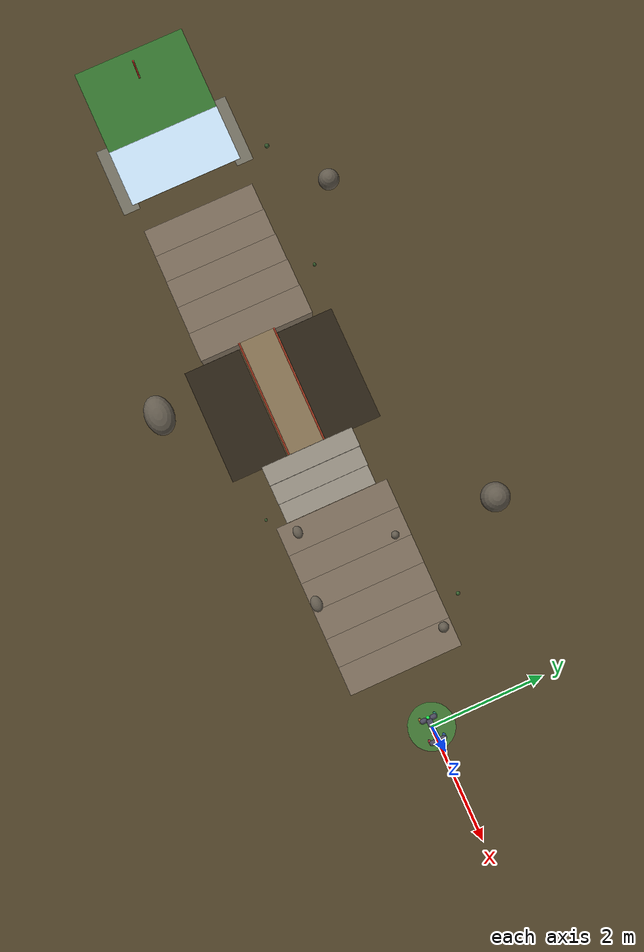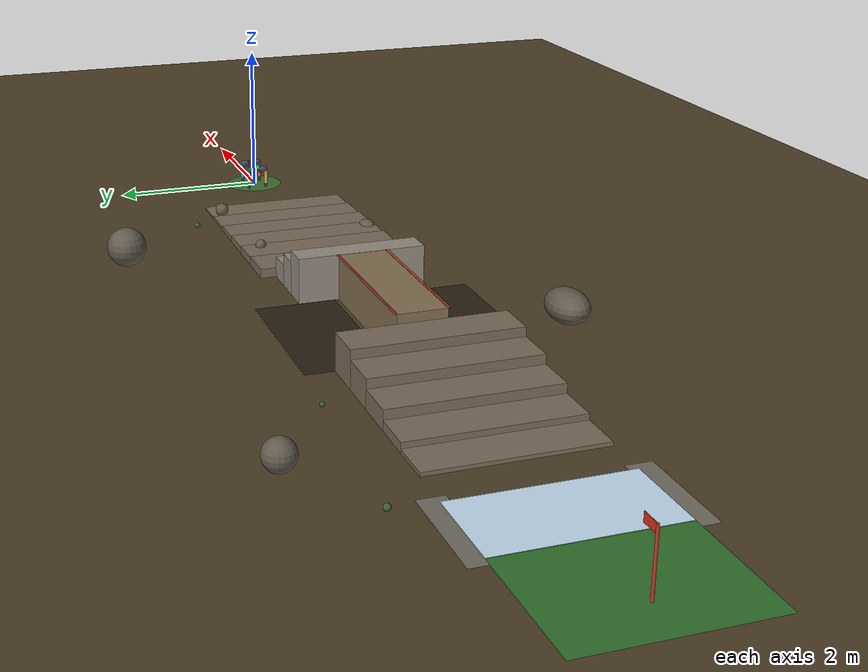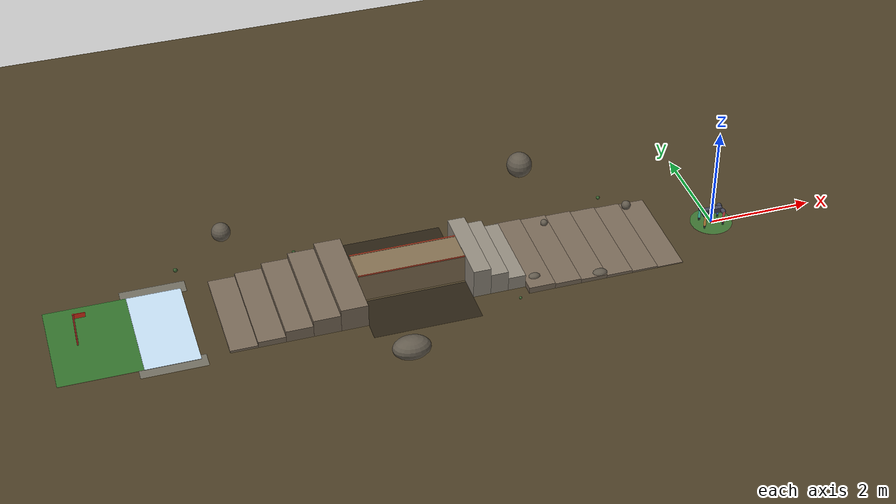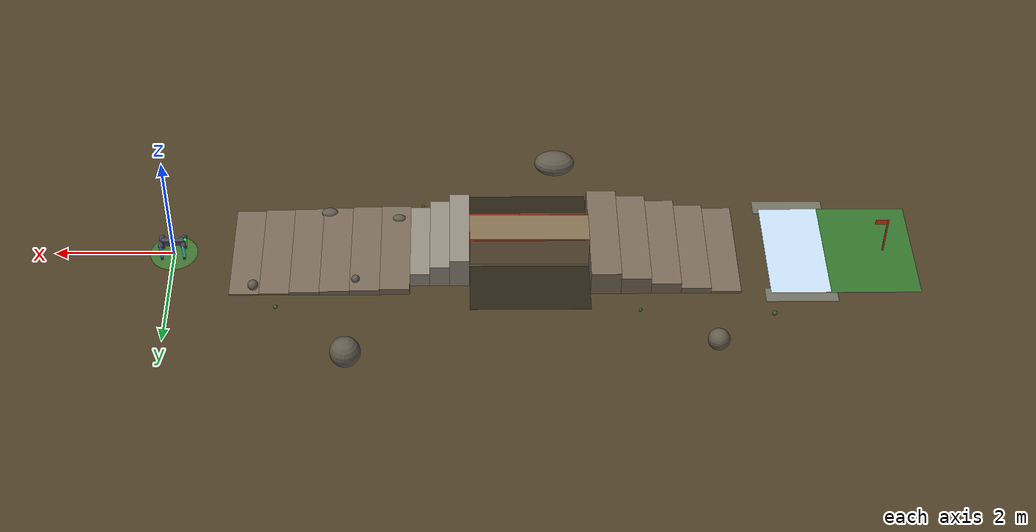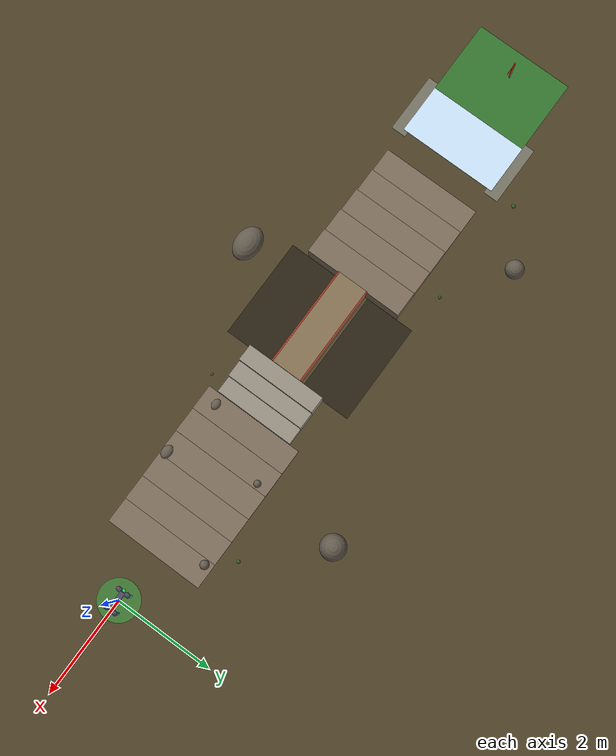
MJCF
<mujoco model="mountain_goat">

  <compiler angle="radian" autolimits="true"/>
  <option gravity="0 0 -9.81" timestep="0.002" iterations="50" tolerance="1e-10"
          cone="elliptic" impratio="100"/>

  <default>
    <joint damping="2.0" frictionloss="0.2" armature="0.01"/>
    <geom contype="1" conaffinity="1" condim="3"
          friction="0.6 0.02 0.001" solref="0.005 1" solimp="0.98 0.99 0.001"/>
    <position kp="300" ctrlrange="-3.14 3.14" forcelimited="true" forcerange="-33.5 33.5"/>
    <default class="hip_joint">
      <joint damping="1.0" frictionloss="0.2" armature="0.01"/>
    </default>
    <default class="foot">
      <geom condim="6" friction="0.8 0.02 0.01"
            solimp="0.015 1 0.023" solref="0.005 1"/>
    </default>
  </default>

  <asset>
    <texture type="skybox" builtin="gradient"
             rgb1="0.45 0.60 0.80" rgb2="0.08 0.10 0.20" width="512" height="512"/>
    <texture name="dirt" type="2d" builtin="flat"
             rgb1="0.28 0.22 0.14" width="64" height="64"/>
    <material name="ground"     rgba="0.30 0.25 0.15 1" reflectance="0.02"/>
    <material name="rock"       rgba="0.48 0.42 0.35 1"/>
    <material name="stone"      rgba="0.58 0.55 0.50 1"/>
    <material name="ridge_mat"  rgba="0.52 0.44 0.32 1"/>
    <material name="ice_mat"    rgba="0.78 0.88 0.96 0.9"/>
    <material name="boulder_mat" rgba="0.38 0.35 0.30 1"/>
    <material name="body_mat"   rgba="0.28 0.28 0.35 1"/>
    <material name="leg_mat"    rgba="0.22 0.22 0.28 1"/>
  </asset>

  <worldbody>
    <!-- Mountain lighting — bright sun with blue fill -->
    <light name="sun"  pos="4 -6 10" dir="-0.3 0.4 -1" diffuse="1.0 0.95 0.85" castshadow="true"/>
    <light name="fill" pos="-8 4 6"  dir="0.5 -0.3 -1" diffuse="0.25 0.30 0.40" castshadow="false"/>

    <!-- Ground plane -->
    <geom name="floor" type="plane" size="30 30 0.1" material="ground"
          condim="6" friction="0.8 0.02 0.01"/>

    <!--  TERRAIN COURSE (robot starts at origin, walks toward -x)        -->

    <!-- Start marker (green ring on ground) -->
    <geom name="start_ring" type="cylinder" size="0.4 0.003" pos="0 0 0.003"
          rgba="0.2 0.8 0.3 0.4" contype="0" conaffinity="0"/>

    <!-- ── Section 2: Rocky upslope (x=-1 to x=-4, 6 steps, 2cm rise each) ── -->
    <geom name="ramp_0" type="box" size="0.25 1.0 0.010" pos="-1.25 0 0.010" material="rock" friction="0.7 0.02 0.001"/>
    <geom name="ramp_1" type="box" size="0.25 1.0 0.020" pos="-1.75 0 0.020" material="rock" friction="0.7 0.02 0.001"/>
    <geom name="ramp_2" type="box" size="0.25 1.0 0.030" pos="-2.25 0 0.030" material="rock" friction="0.7 0.02 0.001"/>
    <geom name="ramp_3" type="box" size="0.25 1.0 0.040" pos="-2.75 0 0.040" material="rock" friction="0.7 0.02 0.001"/>
    <geom name="ramp_4" type="box" size="0.25 1.0 0.050" pos="-3.25 0 0.050" material="rock" friction="0.7 0.02 0.001"/>
    <geom name="ramp_5" type="box" size="0.25 1.0 0.060" pos="-3.75 0 0.060" material="rock" friction="0.7 0.02 0.001"/>

    <!-- Decorative boulders along upslope (non-blocking, offset from path) -->
    <geom name="boulder_1" type="sphere"    size="0.09"            pos="-1.4  0.85 0.09"  material="boulder_mat"/>
    <geom name="boulder_2" type="ellipsoid" size="0.14 0.10 0.07"  pos="-2.6 -0.90 0.07"  material="boulder_mat"/>
    <geom name="boulder_3" type="sphere"    size="0.07"            pos="-3.1  0.75 0.12"  material="boulder_mat"/>
    <geom name="boulder_4" type="ellipsoid" size="0.11 0.08 0.06"  pos="-3.8 -0.70 0.12"  material="boulder_mat"/>

    <!-- ── Section 3: Stone staircase (x=-4 to x=-5, 3 steps of 15cm) ── -->
    <!-- Each box spans from z=0 to its top surface -->
    <geom name="stair_1" type="box" size="0.165 0.8 0.135" pos="-4.17 0 0.135" material="stone" friction="0.85 0.02 0.001"/>
    <geom name="stair_2" type="box" size="0.165 0.8 0.210" pos="-4.50 0 0.210" material="stone" friction="0.85 0.02 0.001"/>
    <geom name="stair_3" type="box" size="0.165 0.8 0.285" pos="-4.83 0 0.285" material="stone" friction="0.85 0.02 0.001"/>

    <!-- ── Section 4: Narrow elevated ridge (x=-5 to x=-7) ── -->
    <geom name="ridge" type="box" size="1.0 0.30 0.285" pos="-6.0 0 0.285"
          material="ridge_mat" friction="0.75 0.02 0.001"/>
    <!-- Danger markers on ridge edges (visual only) -->
    <geom name="edge_L" type="box" size="1.0 0.015 0.004" pos="-6.0  0.31 0.574"
          rgba="0.85 0.25 0.15 0.7" contype="0" conaffinity="0"/>
    <geom name="edge_R" type="box" size="1.0 0.015 0.004" pos="-6.0 -0.31 0.574"
          rgba="0.85 0.25 0.15 0.7" contype="0" conaffinity="0"/>
    <!-- Drop-off visual (dark areas beside ridge) -->
    <geom name="drop_L" type="box" size="1.0 0.5 0.002" pos="-6.0  0.85 0.002"
          rgba="0.12 0.10 0.08 0.6" contype="0" conaffinity="0"/>
    <geom name="drop_R" type="box" size="1.0 0.5 0.002" pos="-6.0 -0.85 0.002"
          rgba="0.12 0.10 0.08 0.6" contype="0" conaffinity="0"/>

    <!-- ── Section 5: Downslope (x=-7 to x=-9.5, 5 steps descending) ── -->
    <geom name="down_0" type="box" size="0.25 1.0 0.228" pos="-7.25 0 0.228" material="rock" friction="0.7 0.02 0.001"/>
    <geom name="down_1" type="box" size="0.25 1.0 0.171" pos="-7.75 0 0.171" material="rock" friction="0.7 0.02 0.001"/>
    <geom name="down_2" type="box" size="0.25 1.0 0.114" pos="-8.25 0 0.114" material="rock" friction="0.7 0.02 0.001"/>
    <geom name="down_3" type="box" size="0.25 1.0 0.057" pos="-8.75 0 0.057" material="rock" friction="0.7 0.02 0.001"/>
    <geom name="down_4" type="box" size="0.25 1.0 0.0225" pos="-9.25 0 0.0225" material="rock" friction="0.7 0.02 0.001"/>

    <!-- More boulders along downslope -->
    <geom name="boulder_5" type="sphere"    size="0.08"           pos="-7.5  0.80 0.08" material="boulder_mat"/>
    <geom name="boulder_6" type="ellipsoid" size="0.10 0.07 0.05" pos="-8.8 -0.75 0.05" material="boulder_mat"/>

    <!-- ── Section 6: Ice patch (x=-10 to x=-11) ── -->
    <geom name="ice" type="box" size="0.50 1.0 0.004" pos="-10.5 0 0.004"
          material="ice_mat" friction="0.12 0.005 0.001"/>
    <!-- Frost visual around ice -->
    <geom name="frost_L" type="box" size="0.60 0.15 0.002" pos="-10.5  1.05 0.002"
          rgba="0.85 0.92 0.98 0.3" contype="0" conaffinity="0"/>
    <geom name="frost_R" type="box" size="0.60 0.15 0.002" pos="-10.5 -1.05 0.002"
          rgba="0.85 0.92 0.98 0.3" contype="0" conaffinity="0"/>

    <!-- ── Section 7: Finish area (x=-11 to x=-12.5) ── -->
    <geom name="finish_pad" type="box" size="0.75 1.0 0.003" pos="-11.75 0 0.003"
          rgba="0.15 0.70 0.25 0.5" contype="0" conaffinity="0"/>
    <!-- Summit flag -->
    <geom name="flagpole" type="cylinder" size="0.015 0.35" pos="-12.0 0 0.35"
          rgba="0.75 0.20 0.15 1" contype="0" conaffinity="0"/>
    <geom name="flag" type="box" size="0.10 0.004 0.05" pos="-11.89 0 0.65"
          rgba="0.90 0.20 0.10 1" contype="0" conaffinity="0"/>

    <!--  SCATTERED MOUNTAIN SCENERY (non-collision decorations)          -->
    <!-- Large background boulders -->
    <geom type="sphere"    size="0.25" pos="-3.0  2.5 0.25"  material="boulder_mat" contype="0" conaffinity="0"/>
    <geom type="ellipsoid" size="0.35 0.25 0.20" pos="-6.5 -2.0 0.20" material="boulder_mat" contype="0" conaffinity="0"/>
    <geom type="sphere"    size="0.18" pos="-9.0  2.2 0.18"  material="boulder_mat" contype="0" conaffinity="0"/>
    <!-- Small vegetation tufts -->
    <geom type="sphere" size="0.035" pos="-1.8  1.3 0.035" rgba="0.22 0.38 0.18 1" contype="0" conaffinity="0"/>
    <geom type="sphere" size="0.025" pos="-4.2 -1.1 0.025" rgba="0.25 0.40 0.20 1" contype="0" conaffinity="0"/>
    <geom type="sphere" size="0.030" pos="-7.8  1.4 0.030" rgba="0.20 0.35 0.16 1" contype="0" conaffinity="0"/>
    <geom type="sphere" size="0.040" pos="-10.0 1.5 0.040" rgba="0.22 0.36 0.18 1" contype="0" conaffinity="0"/>

    <!--  ROBOT                                                           -->
    <body name="trunk" pos="0 0 0.27">
      <freejoint name="root"/>
      <geom name="trunk" type="box" size="0.1881 0.0475 0.048"
            mass="9.041" material="body_mat"/>
      <site name="imu" pos="0 0 0" size="0.005"/>
      <geom name="head_marker" type="sphere" size="0.03" pos="-0.22 0 0.04"
            rgba="0.1 0.95 0.3 1" contype="0" conaffinity="0" mass="0.001"/>

      <!-- FL leg -->
      <body name="FL_hip" pos="0.1881 0.0472 0">
        <joint name="FL_hip_joint" type="hinge" axis="1 0 0"
               range="-0.863 0.863" class="hip_joint"/>
        <geom type="capsule" size="0.044 0.020" pos="0 0.040 0"
              euler="1.5708 0 0" mass="0.591" material="body_mat"/>
        <body name="FL_thigh" pos="0 0.0838 0">
          <joint name="FL_thigh_joint" type="hinge" axis="0 -1 0"
                 range="-0.686 4.501"/>
          <geom type="capsule" size="0.025" fromto="0 0 0 0 0 -0.213"
                mass="0.921" material="leg_mat" rgba="0.30 0.55 0.90 1"/>
          <body name="FL_calf" pos="0 0 -0.213">
            <joint name="FL_calf_joint" type="hinge" axis="0 -1 0"
                   range="-2.818 -0.888"/>
            <geom type="capsule" size="0.019" fromto="0 0 0 0 0 -0.213"
                  mass="0.135" material="leg_mat"/>
            <body name="FL_foot" pos="0 0 -0.213">
              <geom name="FL_foot_geom" type="sphere" size="0.0165"
                    mass="0.06" rgba="0.30 0.55 0.90 1" class="foot"/>
            </body>
          </body>
        </body>
      </body>

      <!-- FR leg -->
      <body name="FR_hip" pos="0.1881 -0.0472 0">
        <joint name="FR_hip_joint" type="hinge" axis="-1 0 0"
               range="-0.863 0.863" class="hip_joint"/>
        <geom type="capsule" size="0.044 0.020" pos="0 -0.040 0"
              euler="1.5708 0 0" mass="0.591" material="body_mat"/>
        <body name="FR_thigh" pos="0 -0.0838 0">
          <joint name="FR_thigh_joint" type="hinge" axis="0 -1 0"
                 range="-0.686 4.501"/>
          <geom type="capsule" size="0.025" fromto="0 0 0 0 0 -0.213"
                mass="0.921" material="leg_mat" rgba="0.90 0.33 0.33 1"/>
          <body name="FR_calf" pos="0 0 -0.213">
            <joint name="FR_calf_joint" type="hinge" axis="0 -1 0"
                   range="-2.818 -0.888"/>
            <geom type="capsule" size="0.019" fromto="0 0 0 0 0 -0.213"
                  mass="0.135" material="leg_mat"/>
            <body name="FR_foot" pos="0 0 -0.213">
              <geom name="FR_foot_geom" type="sphere" size="0.0165"
                    mass="0.06" rgba="0.90 0.33 0.33 1" class="foot"/>
            </body>
          </body>
        </body>
      </body>

      <!-- RL leg -->
      <body name="RL_hip" pos="-0.1881 0.0472 0">
        <joint name="RL_hip_joint" type="hinge" axis="1 0 0"
               range="-0.863 0.863" class="hip_joint"/>
        <geom type="capsule" size="0.044 0.020" pos="0 0.040 0"
              euler="1.5708 0 0" mass="0.591" material="body_mat"/>
        <body name="RL_thigh" pos="0 0.0838 0">
          <joint name="RL_thigh_joint" type="hinge" axis="0 -1 0"
                 range="-0.686 4.501"/>
          <geom type="capsule" size="0.025" fromto="0 0 0 0 0 -0.213"
                mass="0.921" material="leg_mat" rgba="0.30 0.90 0.75 1"/>
          <body name="RL_calf" pos="0 0 -0.213">
            <joint name="RL_calf_joint" type="hinge" axis="0 -1 0"
                   range="-2.818 -0.888"/>
            <geom type="capsule" size="0.019" fromto="0 0 0 0 0 -0.213"
                  mass="0.135" material="leg_mat"/>
            <body name="RL_foot" pos="0 0 -0.213">
              <geom name="RL_foot_geom" type="sphere" size="0.0165"
                    mass="0.06" rgba="0.30 0.90 0.75 1" class="foot"/>
            </body>
          </body>
        </body>
      </body>

      <!-- RR leg -->
      <body name="RR_hip" pos="-0.1881 -0.0472 0">
        <joint name="RR_hip_joint" type="hinge" axis="-1 0 0"
               range="-0.863 0.863" class="hip_joint"/>
        <geom type="capsule" size="0.044 0.020" pos="0 -0.040 0"
              euler="1.5708 0 0" mass="0.591" material="body_mat"/>
        <body name="RR_thigh" pos="0 -0.0838 0">
          <joint name="RR_thigh_joint" type="hinge" axis="0 -1 0"
                 range="-0.686 4.501"/>
          <geom type="capsule" size="0.025" fromto="0 0 0 0 0 -0.213"
                mass="0.921" material="leg_mat" rgba="0.90 0.65 0.30 1"/>
          <body name="RR_calf" pos="0 0 -0.213">
            <joint name="RR_calf_joint" type="hinge" axis="0 -1 0"
                   range="-2.818 -0.888"/>
            <geom type="capsule" size="0.019" fromto="0 0 0 0 0 -0.213"
                  mass="0.135" material="leg_mat"/>
            <body name="RR_foot" pos="0 0 -0.213">
              <geom name="RR_foot_geom" type="sphere" size="0.0165"
                    mass="0.06" rgba="0.90 0.65 0.30 1" class="foot"/>
            </body>
          </body>
        </body>
      </body>

    </body><!-- /trunk -->
  </worldbody>

  <actuator>
    <position name="FL_hip"   joint="FL_hip_joint"   ctrlrange="-0.80 0.80"   forcelimited="true" forcerange="-23.7 23.7"/>
    <position name="FL_thigh" joint="FL_thigh_joint" ctrlrange="-0.50 2.50"   forcelimited="true" forcerange="-23.7 23.7"/>
    <position name="FL_calf"  joint="FL_calf_joint"  ctrlrange="-2.75 -0.60"  forcelimited="true" forcerange="-35.55 35.55"/>
    <position name="FR_hip"   joint="FR_hip_joint"   ctrlrange="-0.80 0.80"   forcelimited="true" forcerange="-23.7 23.7"/>
    <position name="FR_thigh" joint="FR_thigh_joint" ctrlrange="-0.50 2.50"   forcelimited="true" forcerange="-23.7 23.7"/>
    <position name="FR_calf"  joint="FR_calf_joint"  ctrlrange="-2.75 -0.60"  forcelimited="true" forcerange="-35.55 35.55"/>
    <position name="RL_hip"   joint="RL_hip_joint"   ctrlrange="-0.80 0.80"   forcelimited="true" forcerange="-23.7 23.7"/>
    <position name="RL_thigh" joint="RL_thigh_joint" ctrlrange="-0.50 2.50"   forcelimited="true" forcerange="-23.7 23.7"/>
    <position name="RL_calf"  joint="RL_calf_joint"  ctrlrange="-2.75 -0.60"  forcelimited="true" forcerange="-35.55 35.55"/>
    <position name="RR_hip"   joint="RR_hip_joint"   ctrlrange="-0.80 0.80"   forcelimited="true" forcerange="-23.7 23.7"/>
    <position name="RR_thigh" joint="RR_thigh_joint" ctrlrange="-0.50 2.50"   forcelimited="true" forcerange="-23.7 23.7"/>
    <position name="RR_calf"  joint="RR_calf_joint"  ctrlrange="-2.75 -0.60"  forcelimited="true" forcerange="-35.55 35.55"/>
  </actuator>

  <keyframe>
    <key name="home" qpos="0 0 0.27 1 0 0 0
                           0 0.9 -1.8  0 0.9 -1.8
                           0 0.9 -1.8  0 0.9 -1.8"/>
  </keyframe>

</mujoco>
